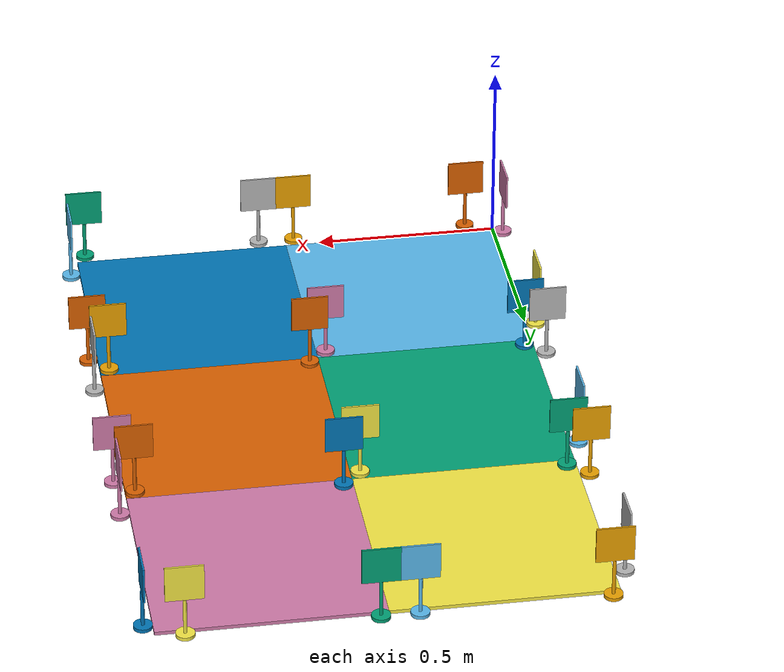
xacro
<?xml version="1.0" ?>
    <!--WARNING: This file was auto-generated by csv2xacro_node.py. It should not be edited by hand.-->
    <robot name="duckietown" xmlns:xacro="http://www.ros.org/wiki/xacro">
        <!--Parameters-->
        <xacro:property name="tile_width" value="0.595"/>
        <xacro:property name="pos_0" value="0.05 0.0"/>
        <xacro:property name="pos_1" value="0.0 0.05"/>
        <xacro:property name="pos_2" value="-0.0 0.05"/>
        <xacro:property name="pos_3" value="-0.05 0.0"/>
        <xacro:property name="pos_4" value="-0.05 -0.0"/>
        <xacro:property name="pos_5" value="-0.0 -0.05"/>
        <xacro:property name="pos_6" value="0.0 -0.05"/>
        <xacro:property name="pos_7" value="0.05 -0.0"/>
        <!--Include the tile and tag macros-->
        <xacro:include filename="$(find duckietown_description)/urdf/macros.urdf.xacro"/>
        <!--The world frame is at the lower left corner of duckietown-->
        <link name="world"/>
        <!--Describe the tiles-->
        <xacro:tile rotation="270" type="turn" x="0" y="0"/>
        <xacro:tile rotation="90" type="straight" x="0" y="1"/>
        <xacro:tile rotation="180" type="turn" x="0" y="2"/>
        <xacro:tile rotation="0" type="turn" x="1" y="0"/>
        <xacro:tile rotation="90" type="straight" x="1" y="1"/>
        <xacro:tile rotation="90" type="turn" x="1" y="2"/>
        <!--Empty border tiles-->
        <xacro:tile visible="false" x="0" y="3"/>
        <xacro:tile visible="false" x="1" y="3"/>
        <xacro:tile visible="false" x="2" y="3"/>
        <xacro:tile visible="false" x="2" y="0"/>
        <xacro:tile visible="false" x="2" y="1"/>
        <xacro:tile visible="false" x="2" y="2"/>
        <!--Describe the tags-->
        <xacro:tag id="115" pos="${pos_0}" rotation="90" x="0" y="0"/>
        <xacro:tag id="43" pos="${pos_2}" rotation="0" x="0" y="0"/>
        <xacro:tag id="29" pos="${pos_0}" rotation="90" x="1" y="0"/>
        <xacro:tag id="122" pos="${pos_4}" rotation="90" x="1" y="0"/>
        <xacro:tag id="37" pos="${pos_2}" rotation="180" x="2" y="0"/>
        <xacro:tag id="120" pos="${pos_4}" rotation="90" x="2" y="0"/>
        <xacro:tag id="55" pos="${pos_6}" rotation="0" x="0" y="1"/>
        <xacro:tag id="69" pos="${pos_2}" rotation="90" x="0" y="1"/>
        <xacro:tag id="123" pos="${pos_2}" rotation="90" x="1" y="1"/>
        <xacro:tag id="111" pos="${pos_6}" rotation="270" x="1" y="1"/>
        <xacro:tag id="121" pos="${pos_2}" rotation="180" x="2" y="1"/>
        <xacro:tag id="107" pos="${pos_6}" rotation="270" x="2" y="1"/>
        <xacro:tag id="56" pos="${pos_6}" rotation="0" x="0" y="2"/>
        <xacro:tag id="75" pos="${pos_2}" rotation="90" x="0" y="2"/>
        <xacro:tag id="118" pos="${pos_6}" rotation="270" x="1" y="2"/>
        <xacro:tag id="54" pos="${pos_2}" rotation="90" x="1" y="2"/>
        <xacro:tag id="50" pos="${pos_6}" rotation="270" x="2" y="2"/>
        <xacro:tag id="124" pos="${pos_2}" rotation="180" x="2" y="2"/>
        <xacro:tag id="117" pos="${pos_6}" rotation="0" x="0" y="3"/>
        <xacro:tag id="40" pos="${pos_0}" rotation="270" x="0" y="3"/>
        <xacro:tag id="106" pos="${pos_4}" rotation="270" x="1" y="3"/>
        <xacro:tag id="34" pos="${pos_0}" rotation="270" x="1" y="3"/>
        <xacro:tag id="42" pos="${pos_4}" rotation="270" x="2" y="3"/>
        <xacro:tag id="116" pos="${pos_6}" rotation="180" x="2" y="3"/>
        <xacro:tag id="110" pos="${pos_6}" rotation="90" x="2" y="1"/>
        <xacro:tag id="113" pos="${pos_6}" rotation="90" x="2" y="2"/>
        <xacro:tag id="114" pos="${pos_2}" rotation="270" x="0" y="1"/>
        <xacro:tag id="109" pos="${pos_2}" rotation="270" x="0" y="2"/>
    </robot>

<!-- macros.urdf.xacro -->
<robot name="macros" xmlns:xacro="http://www.ros.org/wiki/xacro">
    <xacro:property name="pi" value="3.14159265359" />
    <xacro:property name="tile_thickness" value="0.01" />

    <!-- Defines a tile link and joint-->
    <xacro:macro name="tile" params="x y type:=empty rotation:=0 visible:=true">
        <link name="tile_${x}_${y}">
            <xacro:if value="${visible}" >
                <visual>
                    <origin xyz="${tile_width/2} ${tile_width/2} ${-tile_thickness/2}" rpy="0 0 ${rotation * pi/180}"/>
                    <geometry>
                        <mesh filename="package://duckietown_description/urdf/meshes/${type}.dae" />
                    </geometry>
                </visual>
            </xacro:if>
        </link>

        <joint name="world_to_tile_${x}_${y}" type="fixed">
            <parent link="world" />
            <child link="tile_${x}_${y}" />
            <origin xyz="${tile_width * x} ${tile_width * y} 0" />
        </joint>
    </xacro:macro>

    <!-- Defines an april tag link and joint-->
    <xacro:macro name="tag" params="id x y pos rotation">
        <link name="tag_${id}">
            <visual>
                <origin xyz="-0.0254 -0.0254 0" />
                <geometry>
                    <mesh filename="package://duckietown_description/urdf/meshes/tags/tag_${id}.dae" />
                </geometry>
            </visual>
        </link>

        <joint name="world_to_tag_${id}" type="fixed">
            <parent link="tile_${x}_${y}" />
            <child link="tag_${id}" />
            <origin xyz="${pos} 0" rpy="0 0 ${rotation * pi/180}"/>
        </joint>
    </xacro:macro>
</robot>
